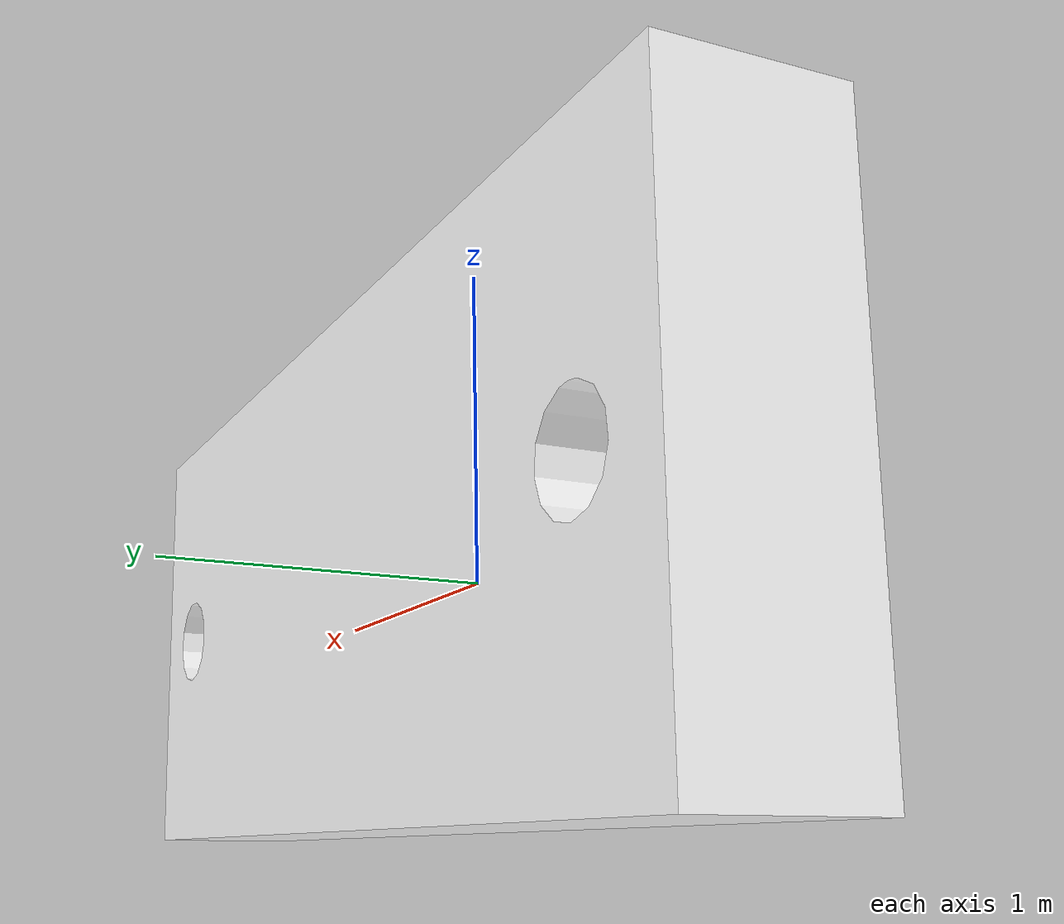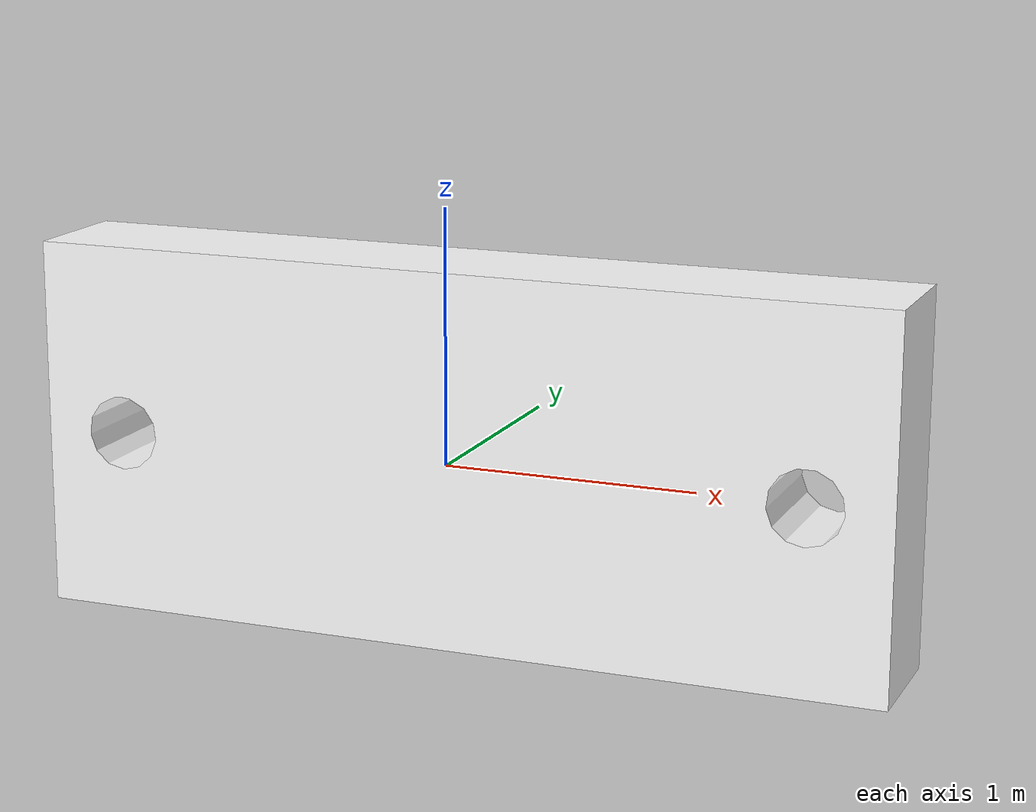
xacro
<?xml version="1.0" encoding="utf-8"?>
<robot name="rigid" xmlns:xacro="http://www.ros.org/wiki/xacro">
    <link name="base_link">
        <inertial>
            <origin xyz="0 0.25 2.22044604925031E-16" rpy="0 0 0" />
            <mass value="0.00000423" />
            <inertia ixx="544.993861067578" ixy="1.13335267097151E-14" ixz="2.3443710807071E-13"
                     iyy="3029.73989963635" iyz="-2.31111593326468E-30" izz="2591.17579545603" />
        </inertial>
        <visual>
            <origin xyz="0 0 0" rpy="0 0 0" />
            <geometry>
                <mesh filename="package://rigid/meshes/base_link.STL" />
            </geometry>
            <material name="">
                <color rgba="1 1 1 1" />
            </material>
        </visual>
        <collision>
            <origin xyz="0 0 0" rpy="0 0 0" />
            <geometry>
                <mesh filename="package://rigid/meshes/base_link.STL" />
            </geometry>
        </collision>
    </link>

</robot>
